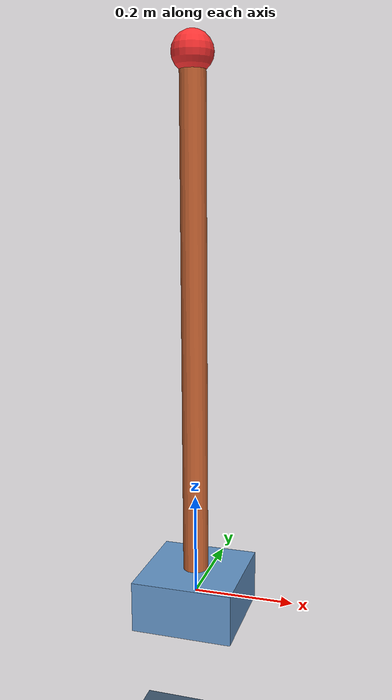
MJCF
<mujoco model="cartpole3d">
  <option gravity="0 0 -9.81" timestep="0.002" integrator="RK4"/>

  <asset>
    <texture name="checker" type="2d" builtin="checker" width="512" height="512"
             rgb1="0.2 0.3 0.4" rgb2="0.3 0.4 0.5"/>
    <material name="floor_mat" texture="checker" texrepeat="5 5" reflectance="0.1"/>
  </asset>

  <worldbody>
    <light name="sun" directional="true" pos="0 0 4" dir="0 -0.3 -1" diffuse="0.8 0.8 0.8"/>
    <geom name="floor" type="plane" size="5 5 0.1" material="floor_mat" pos="0 0 -0.5"/>

    <!-- Cart: two slider joints give it 2D translation across the floor.
         qpos[0]=cart_x ∈ [-2.4, 2.4],  qpos[1]=cart_y ∈ [-2.4, 2.4]. -->
    <body name="cart" pos="0 0 0">
      <joint name="slide_x" type="slide" axis="1 0 0" range="-2.4 2.4" damping="0.5"/>
      <joint name="slide_y" type="slide" axis="0 1 0" range="-2.4 2.4" damping="0.5"/>
      <geom name="cart_geom" type="box" size="0.1 0.1 0.05" mass="1.0"
            rgba="0.4 0.6 0.8 1" condim="1"/>

      <body name="pivot_x" pos="0 0 0.05">
        <joint name="hinge_x" type="hinge" axis="1 0 0" damping="0.01"/>
        <!-- Tiny inertial — MuJoCo requires moving bodies have nonzero mass.
             Real pole mass lives in the pole_geom below; this is a numerical floor. -->
        <inertial pos="0 0 0" mass="1e-4" diaginertia="1e-6 1e-6 1e-6"/>
        <body name="pivot_y">
          <joint name="hinge_y" type="hinge" axis="0 1 0" damping="0.01"/>
          <!-- Pole extends UP from the pivot. Inverted pendulum: unstable. -->
          <geom name="pole_geom" type="capsule" fromto="0 0 0 0 0 1.0"
                size="0.025" mass="0.1" rgba="0.8 0.4 0.2 1"/>
          <geom name="pole_tip" type="sphere" size="0.04" pos="0 0 1.0"
                rgba="1.0 0.2 0.2 1" mass="0"/>
        </body>
      </body>
    </body>
  </worldbody>

  <actuator>
    <!-- Two independent motors: action[0] pushes along x, action[1] along y -->
    <motor name="motor_x" joint="slide_x" gear="10" ctrlrange="-1 1" ctrllimited="true"/>
    <motor name="motor_y" joint="slide_y" gear="10" ctrlrange="-1 1" ctrllimited="true"/>
  </actuator>

</mujoco>
